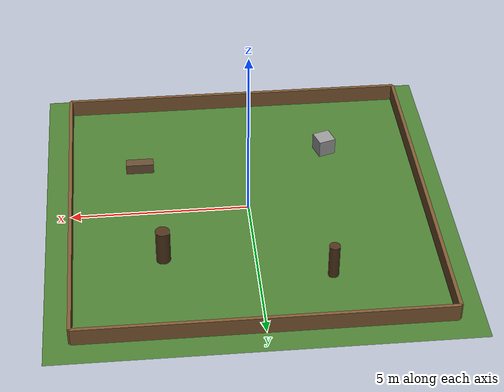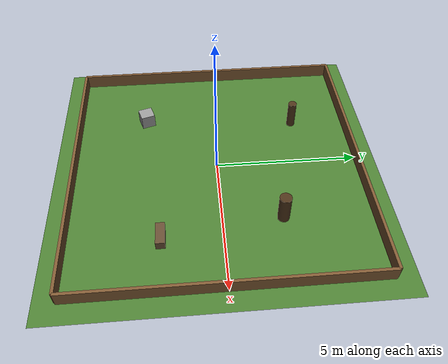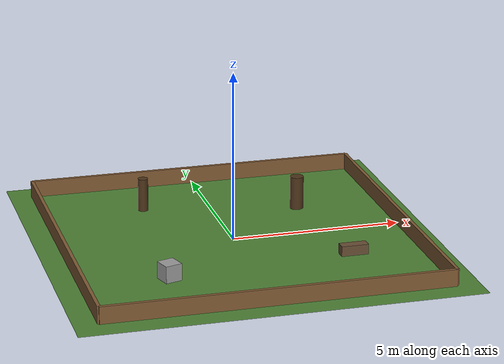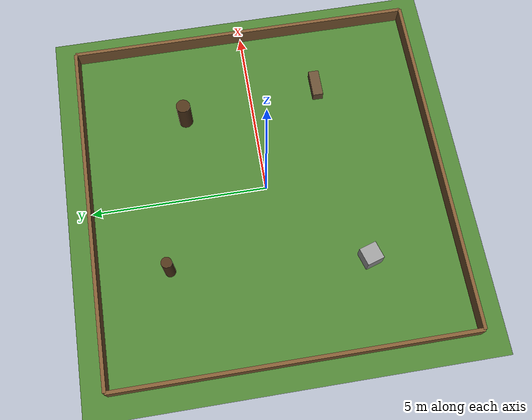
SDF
<?xml version="1.0" ?>
<sdf version="1.9">
  <world name="backyard">

    <!-- Física padrão (gravidade, atrito, etc.) -->
    <physics name="1ms" type="ignored">
      <max_step_size>0.001</max_step_size>
      <real_time_factor>1.0</real_time_factor>
    </physics>

    <!-- Plugins essenciais do Gazebo -->
    <plugin filename="gz-sim-physics-system"
            name="gz::sim::systems::Physics"/>
    <plugin filename="gz-sim-user-commands-system"
            name="gz::sim::systems::UserCommands"/>
    <plugin filename="gz-sim-scene-broadcaster-system"
            name="gz::sim::systems::SceneBroadcaster"/>
    <plugin filename="gz-sim-sensors-system"
            name="gz::sim::systems::Sensors">
      <render_engine>ogre</render_engine>
    </plugin>
    <plugin filename="gz-sim-imu-system"
            name="gz::sim::systems::Imu"/>

    <!-- Luz solar -->
    <light type="directional" name="sun">
      <cast_shadows>true</cast_shadows>
      <pose>0 0 10 0 0 0</pose>
      <diffuse>0.8 0.8 0.8 1</diffuse>
      <specular>0.2 0.2 0.2 1</specular>
      <direction>-0.5 0.1 -0.9</direction>
    </light>

    <!-- Cor de fundo do céu -->
    <scene>
      <ambient>0.4 0.4 0.4 1</ambient>
      <background>0.7 0.85 1.0</background>
    </scene>

    <!-- ============ CHÃO (gramado) ============ -->
    <model name="ground">
      <static>true</static>
      <link name="ground_link">
        <collision name="ground_collision">
          <geometry>
            <plane>
              <normal>0 0 1</normal>
              <size>20 20</size>
            </plane>
          </geometry>
        </collision>
        <visual name="ground_visual">
          <geometry>
            <plane>
              <normal>0 0 1</normal>
              <size>20 20</size>
            </plane>
          </geometry>
          <material>
            <ambient>0.3 0.5 0.2 1</ambient>
            <diffuse>0.3 0.5 0.2 1</diffuse>
            <specular>0.1 0.1 0.1 1</specular>
          </material>
        </visual>
      </link>
    </model>

    <!-- ============ CERCAS (4 paredes formando quadrado 10x10) ============ -->
    <!-- Macro mental: cada parede é um modelo estático com cor de madeira -->

    <model name="fence_north">
      <static>true</static>
      <pose>0 5 0.25 0 0 0</pose>
      <link name="link">
        <collision name="c"><geometry><box><size>10 0.1 0.5</size></box></geometry></collision>
        <visual name="v">
          <geometry><box><size>10 0.1 0.5</size></box></geometry>
          <material><ambient>0.5 0.35 0.2 1</ambient><diffuse>0.5 0.35 0.2 1</diffuse></material>
        </visual>
      </link>
    </model>

    <model name="fence_south">
      <static>true</static>
      <pose>0 -5 0.25 0 0 0</pose>
      <link name="link">
        <collision name="c"><geometry><box><size>10 0.1 0.5</size></box></geometry></collision>
        <visual name="v">
          <geometry><box><size>10 0.1 0.5</size></box></geometry>
          <material><ambient>0.5 0.35 0.2 1</ambient><diffuse>0.5 0.35 0.2 1</diffuse></material>
        </visual>
      </link>
    </model>

    <model name="fence_east">
      <static>true</static>
      <pose>5 0 0.25 0 0 0</pose>
      <link name="link">
        <collision name="c"><geometry><box><size>0.1 10 0.5</size></box></geometry></collision>
        <visual name="v">
          <geometry><box><size>0.1 10 0.5</size></box></geometry>
          <material><ambient>0.5 0.35 0.2 1</ambient><diffuse>0.5 0.35 0.2 1</diffuse></material>
        </visual>
      </link>
    </model>

    <model name="fence_west">
      <static>true</static>
      <pose>-5 0 0.25 0 0 0</pose>
      <link name="link">
        <collision name="c"><geometry><box><size>0.1 10 0.5</size></box></geometry></collision>
        <visual name="v">
          <geometry><box><size>0.1 10 0.5</size></box></geometry>
          <material><ambient>0.5 0.35 0.2 1</ambient><diffuse>0.5 0.35 0.2 1</diffuse></material>
        </visual>
      </link>
    </model>

    <!-- ============ OBSTÁCULOS (representam árvores, pedras, móveis) ============ -->

    <!-- Cilindro grande (representa árvore) -->
    <model name="tree_1">
      <static>true</static>
      <pose>2.5 2.0 0.5 0 0 0</pose>
      <link name="link">
        <collision name="c"><geometry><cylinder><radius>0.2</radius><length>1.0</length></cylinder></geometry></collision>
        <visual name="v">
          <geometry><cylinder><radius>0.2</radius><length>1.0</length></cylinder></geometry>
          <material><ambient>0.3 0.2 0.1 1</ambient><diffuse>0.3 0.2 0.1 1</diffuse></material>
        </visual>
      </link>
    </model>

    <model name="tree_2">
      <static>true</static>
      <pose>-2.0 3.0 0.5 0 0 0</pose>
      <link name="link">
        <collision name="c"><geometry><cylinder><radius>0.15</radius><length>1.0</length></cylinder></geometry></collision>
        <visual name="v">
          <geometry><cylinder><radius>0.15</radius><length>1.0</length></cylinder></geometry>
          <material><ambient>0.3 0.2 0.1 1</ambient><diffuse>0.3 0.2 0.1 1</diffuse></material>
        </visual>
      </link>
    </model>

    <!-- Caixas (móveis de jardim, pedras grandes) -->
    <model name="box_1">
      <static>true</static>
      <pose>-2.5 -2.5 0.25 0 0 0.3</pose>
      <link name="link">
        <collision name="c"><geometry><box><size>0.5 0.5 0.5</size></box></geometry></collision>
        <visual name="v">
          <geometry><box><size>0.5 0.5 0.5</size></box></geometry>
          <material><ambient>0.6 0.6 0.6 1</ambient><diffuse>0.6 0.6 0.6 1</diffuse></material>
        </visual>
      </link>
    </model>

    <model name="box_2">
      <static>true</static>
      <pose>3.0 -2.0 0.15 0 0 0</pose>
      <link name="link">
        <collision name="c"><geometry><box><size>0.8 0.3 0.3</size></box></geometry></collision>
        <visual name="v">
          <geometry><box><size>0.8 0.3 0.3</size></box></geometry>
          <material><ambient>0.4 0.3 0.2 1</ambient><diffuse>0.4 0.3 0.2 1</diffuse></material>
        </visual>
      </link>
    </model>

  </world>
</sdf>
